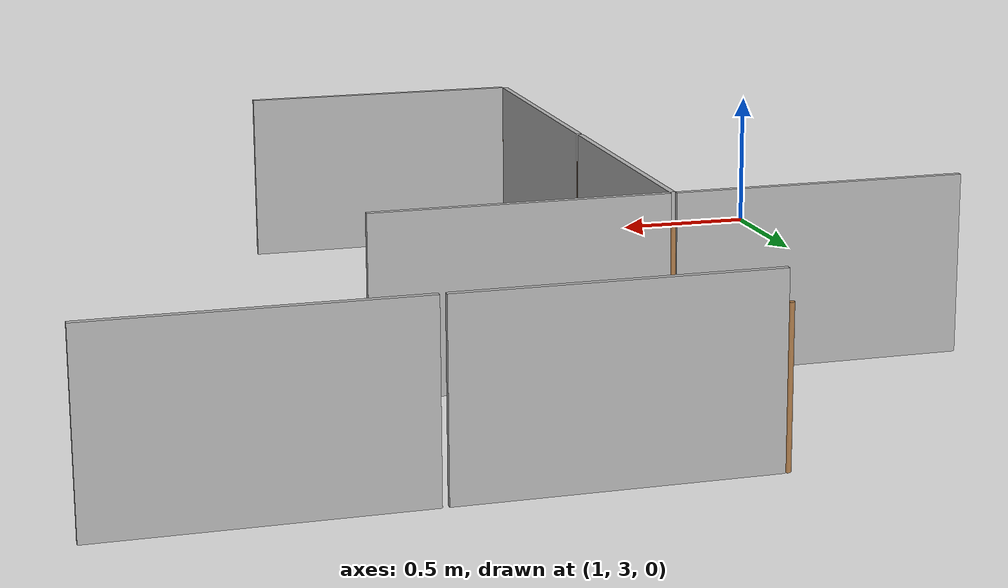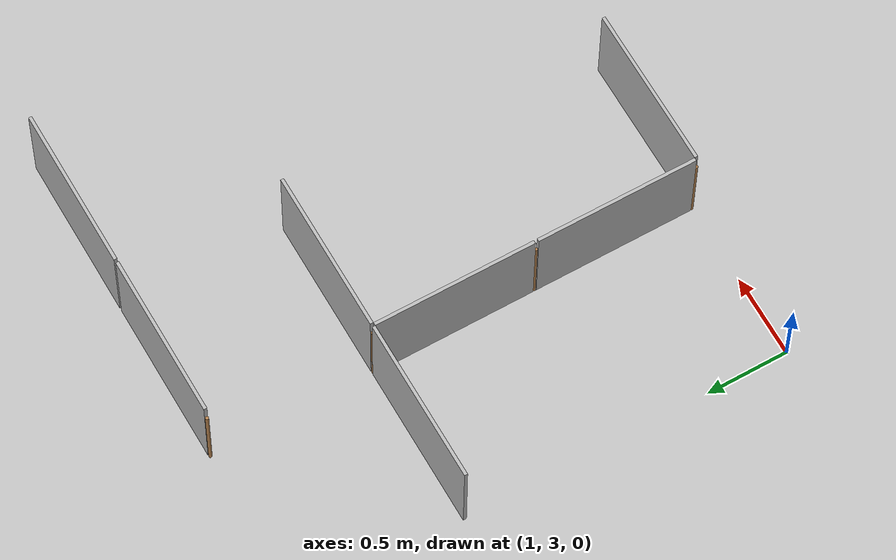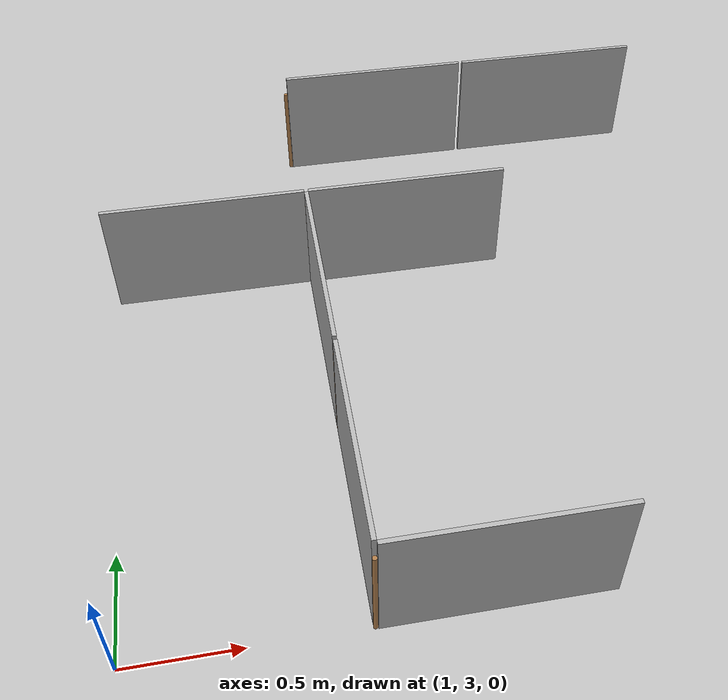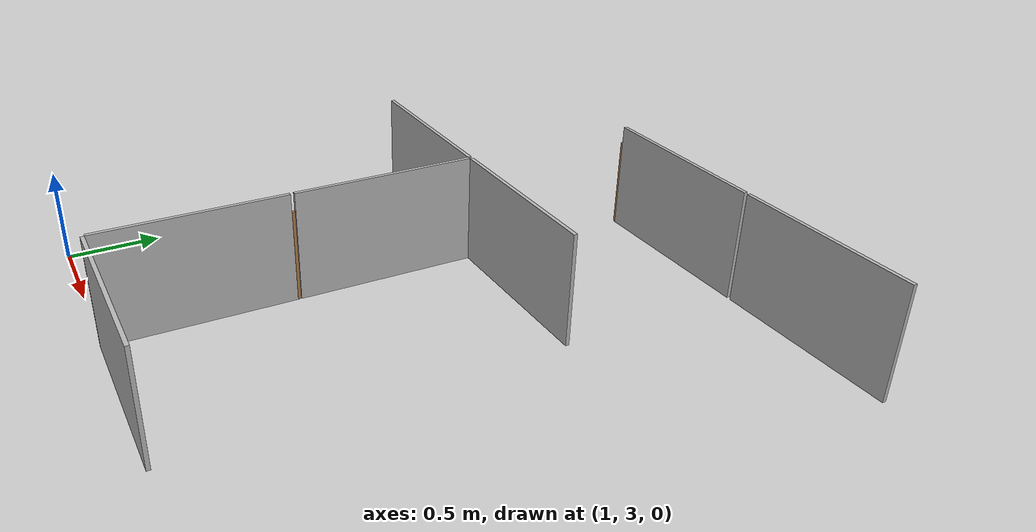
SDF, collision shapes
<sdf version="1.7">
 <model name="maze_3_6x6">
  <link name="plywood_panel_2_4_a::main">
   <pose>2 4 0 0 -0 0</pose>
   <visual name="visual">
    <pose>0.01 -0.01 0 3.14159 -1.57059 3.14159</pose>
    <geometry><mesh><scale>1 1 1</scale><uri>model://plywood_panel/meshes/plywood.dae</uri></mesh></geometry>
    <material><shader type="pixel"/></material>
   </visual>
   <collision name="collision">
    <pose>0 -0.5 0.3 -1.571 -0 -1.571</pose>
    <geometry><box><size>0.98 0.6 0.02</size></box></geometry>
    <surface>
     <friction>
      <ode><mu>1</mu><mu2>1</mu2><fdir1>0 0 0</fdir1><slip1>0</slip1><slip2>0</slip2></ode>
      <torsional>
       <coefficient>1</coefficient>
       <patch_radius>0</patch_radius>
       <surface_radius>0</surface_radius>
       <use_patch_radius>1</use_patch_radius>
       <ode><slip>0</slip></ode>
      </torsional>
     </friction>
     <bounce><restitution_coefficient>0</restitution_coefficient><threshold>1e+06</threshold></bounce>
     <contact>
      <collide_without_contact>0</collide_without_contact>
      <collide_without_contact_bitmask>1</collide_without_contact_bitmask>
      <collide_bitmask>1</collide_bitmask>
      <ode>
       <soft_cfm>0</soft_cfm>
       <soft_erp>0.2</soft_erp>
       <kp>1e+13</kp>
       <kd>1</kd>
       <max_vel>0.01</max_vel>
       <min_depth>0</min_depth>
      </ode>
      <bullet>
       <split_impulse>1</split_impulse>
       <split_impulse_penetration_threshold>-0.01</split_impulse_penetration_threshold>
       <soft_cfm>0</soft_cfm>
       <soft_erp>0.2</soft_erp>
       <kp>1e+13</kp>
       <kd>1</kd>
      </bullet>
     </contact>
    </surface>
   </collision>
  </link>
  <link name="plywood_panel_2_5_a::main">
   <pose>2 5 0 0 -0 0</pose>
   <visual name="visual">
    <pose>0.01 -0.01 0 3.14159 -1.57059 3.14159</pose>
    <geometry><mesh><scale>1 1 1</scale><uri>model://plywood_panel/meshes/plywood.dae</uri></mesh></geometry>
    <material><shader type="pixel"/></material>
   </visual>
   <collision name="collision">
    <pose>0 -0.5 0.3 -1.571 -0 -1.571</pose>
    <geometry><box><size>0.98 0.6 0.02</size></box></geometry>
    <surface>
     <friction>
      <ode><mu>1</mu><mu2>1</mu2><fdir1>0 0 0</fdir1><slip1>0</slip1><slip2>0</slip2></ode>
      <torsional>
       <coefficient>1</coefficient>
       <patch_radius>0</patch_radius>
       <surface_radius>0</surface_radius>
       <use_patch_radius>1</use_patch_radius>
       <ode><slip>0</slip></ode>
      </torsional>
     </friction>
     <bounce><restitution_coefficient>0</restitution_coefficient><threshold>1e+06</threshold></bounce>
     <contact>
      <collide_without_contact>0</collide_without_contact>
      <collide_without_contact_bitmask>1</collide_without_contact_bitmask>
      <collide_bitmask>1</collide_bitmask>
      <ode>
       <soft_cfm>0</soft_cfm>
       <soft_erp>0.2</soft_erp>
       <kp>1e+13</kp>
       <kd>1</kd>
       <max_vel>0.01</max_vel>
       <min_depth>0</min_depth>
      </ode>
      <bullet>
       <split_impulse>1</split_impulse>
       <split_impulse_penetration_threshold>-0.01</split_impulse_penetration_threshold>
       <soft_cfm>0</soft_cfm>
       <soft_erp>0.2</soft_erp>
       <kp>1e+13</kp>
       <kd>1</kd>
      </bullet>
     </contact>
    </surface>
   </collision>
  </link>
  <link name="plywood_panel_2_5_c::main">
   <pose>2 5 0 0 0 -1.5708</pose>
   <visual name="visual">
    <pose>0.01 -0.01 0 3.14159 -1.57059 3.14159</pose>
    <geometry><mesh><scale>1 1 1</scale><uri>model://plywood_panel/meshes/plywood.dae</uri></mesh></geometry>
    <material><shader type="pixel"/></material>
   </visual>
   <collision name="collision">
    <pose>0 -0.5 0.3 -1.571 -0 -1.571</pose>
    <geometry><box><size>0.98 0.6 0.02</size></box></geometry>
    <surface>
     <friction>
      <ode><mu>1</mu><mu2>1</mu2><fdir1>0 0 0</fdir1><slip1>0</slip1><slip2>0</slip2></ode>
      <torsional>
       <coefficient>1</coefficient>
       <patch_radius>0</patch_radius>
       <surface_radius>0</surface_radius>
       <use_patch_radius>1</use_patch_radius>
       <ode><slip>0</slip></ode>
      </torsional>
     </friction>
     <bounce><restitution_coefficient>0</restitution_coefficient><threshold>1e+06</threshold></bounce>
     <contact>
      <collide_without_contact>0</collide_without_contact>
      <collide_without_contact_bitmask>1</collide_without_contact_bitmask>
      <collide_bitmask>1</collide_bitmask>
      <ode>
       <soft_cfm>0</soft_cfm>
       <soft_erp>0.2</soft_erp>
       <kp>1e+13</kp>
       <kd>1</kd>
       <max_vel>0.01</max_vel>
       <min_depth>0</min_depth>
      </ode>
      <bullet>
       <split_impulse>1</split_impulse>
       <split_impulse_penetration_threshold>-0.01</split_impulse_penetration_threshold>
       <soft_cfm>0</soft_cfm>
       <soft_erp>0.2</soft_erp>
       <kp>1e+13</kp>
       <kd>1</kd>
      </bullet>
     </contact>
    </surface>
   </collision>
  </link>
  <link name="plywood_panel_2_6_b::main">
   <pose>2 6 0 0 -0 1.571</pose>
   <visual name="visual">
    <pose>0.01 -0.01 0 3.14159 -1.57059 3.14159</pose>
    <geometry><mesh><scale>1 1 1</scale><uri>model://plywood_panel/meshes/plywood.dae</uri></mesh></geometry>
    <material><shader type="pixel"/></material>
   </visual>
   <collision name="collision">
    <pose>0 -0.5 0.3 -1.571 -0 -1.571</pose>
    <geometry><box><size>0.98 0.6 0.02</size></box></geometry>
    <surface>
     <friction>
      <ode><mu>1</mu><mu2>1</mu2><fdir1>0 0 0</fdir1><slip1>0</slip1><slip2>0</slip2></ode>
      <torsional>
       <coefficient>1</coefficient>
       <patch_radius>0</patch_radius>
       <surface_radius>0</surface_radius>
       <use_patch_radius>1</use_patch_radius>
       <ode><slip>0</slip></ode>
      </torsional>
     </friction>
     <bounce><restitution_coefficient>0</restitution_coefficient><threshold>1e+06</threshold></bounce>
     <contact>
      <collide_without_contact>0</collide_without_contact>
      <collide_without_contact_bitmask>1</collide_without_contact_bitmask>
      <collide_bitmask>1</collide_bitmask>
      <ode>
       <soft_cfm>0</soft_cfm>
       <soft_erp>0.2</soft_erp>
       <kp>1e+13</kp>
       <kd>1</kd>
       <max_vel>0.01</max_vel>
       <min_depth>0</min_depth>
      </ode>
      <bullet>
       <split_impulse>1</split_impulse>
       <split_impulse_penetration_threshold>-0.01</split_impulse_penetration_threshold>
       <soft_cfm>0</soft_cfm>
       <soft_erp>0.2</soft_erp>
       <kp>1e+13</kp>
       <kd>1</kd>
      </bullet>
     </contact>
    </surface>
   </collision>
  </link>
  <link name="plywood_panel_3_3_c::main">
   <pose>3 3 0 0 0 -1.5708</pose>
   <visual name="visual">
    <pose>0.01 -0.01 0 3.14159 -1.57059 3.14159</pose>
    <geometry><mesh><scale>1 1 1</scale><uri>model://plywood_panel/meshes/plywood.dae</uri></mesh></geometry>
    <material><shader type="pixel"/></material>
   </visual>
   <collision name="collision">
    <pose>0 -0.5 0.3 -1.571 -0 -1.571</pose>
    <geometry><box><size>0.98 0.6 0.02</size></box></geometry>
    <surface>
     <friction>
      <ode><mu>1</mu><mu2>1</mu2><fdir1>0 0 0</fdir1><slip1>0</slip1><slip2>0</slip2></ode>
      <torsional>
       <coefficient>1</coefficient>
       <patch_radius>0</patch_radius>
       <surface_radius>0</surface_radius>
       <use_patch_radius>1</use_patch_radius>
       <ode><slip>0</slip></ode>
      </torsional>
     </friction>
     <bounce><restitution_coefficient>0</restitution_coefficient><threshold>1e+06</threshold></bounce>
     <contact>
      <collide_without_contact>0</collide_without_contact>
      <collide_without_contact_bitmask>1</collide_without_contact_bitmask>
      <collide_bitmask>1</collide_bitmask>
      <ode>
       <soft_cfm>0</soft_cfm>
       <soft_erp>0.2</soft_erp>
       <kp>1e+13</kp>
       <kd>1</kd>
       <max_vel>0.01</max_vel>
       <min_depth>0</min_depth>
      </ode>
      <bullet>
       <split_impulse>1</split_impulse>
       <split_impulse_penetration_threshold>-0.01</split_impulse_penetration_threshold>
       <soft_cfm>0</soft_cfm>
       <soft_erp>0.2</soft_erp>
       <kp>1e+13</kp>
       <kd>1</kd>
      </bullet>
     </contact>
    </surface>
   </collision>
  </link>
  <link name="plywood_panel_3_5_c::main">
   <pose>3 5 0 0 0 -1.5708</pose>
   <visual name="visual">
    <pose>0.01 -0.01 0 3.14159 -1.57059 3.14159</pose>
    <geometry><mesh><scale>1 1 1</scale><uri>model://plywood_panel/meshes/plywood.dae</uri></mesh></geometry>
    <material><shader type="pixel"/></material>
   </visual>
   <collision name="collision">
    <pose>0 -0.5 0.3 -1.571 -0 -1.571</pose>
    <geometry><box><size>0.98 0.6 0.02</size></box></geometry>
    <surface>
     <friction>
      <ode><mu>1</mu><mu2>1</mu2><fdir1>0 0 0</fdir1><slip1>0</slip1><slip2>0</slip2></ode>
      <torsional>
       <coefficient>1</coefficient>
       <patch_radius>0</patch_radius>
       <surface_radius>0</surface_radius>
       <use_patch_radius>1</use_patch_radius>
       <ode><slip>0</slip></ode>
      </torsional>
     </friction>
     <bounce><restitution_coefficient>0</restitution_coefficient><threshold>1e+06</threshold></bounce>
     <contact>
      <collide_without_contact>0</collide_without_contact>
      <collide_without_contact_bitmask>1</collide_without_contact_bitmask>
      <collide_bitmask>1</collide_bitmask>
      <ode>
       <soft_cfm>0</soft_cfm>
       <soft_erp>0.2</soft_erp>
       <kp>1e+13</kp>
       <kd>1</kd>
       <max_vel>0.01</max_vel>
       <min_depth>0</min_depth>
      </ode>
      <bullet>
       <split_impulse>1</split_impulse>
       <split_impulse_penetration_threshold>-0.01</split_impulse_penetration_threshold>
       <soft_cfm>0</soft_cfm>
       <soft_erp>0.2</soft_erp>
       <kp>1e+13</kp>
       <kd>1</kd>
      </bullet>
     </contact>
    </surface>
   </collision>
  </link>
  <link name="plywood_panel_3_6_b::main">
   <pose>3 6 0 0 -0 1.571</pose>
   <visual name="visual">
    <pose>0.01 -0.01 0 3.14159 -1.57059 3.14159</pose>
    <geometry><mesh><scale>1 1 1</scale><uri>model://plywood_panel/meshes/plywood.dae</uri></mesh></geometry>
    <material><shader type="pixel"/></material>
   </visual>
   <collision name="collision">
    <pose>0 -0.5 0.3 -1.571 -0 -1.571</pose>
    <geometry><box><size>0.98 0.6 0.02</size></box></geometry>
    <surface>
     <friction>
      <ode><mu>1</mu><mu2>1</mu2><fdir1>0 0 0</fdir1><slip1>0</slip1><slip2>0</slip2></ode>
      <torsional>
       <coefficient>1</coefficient>
       <patch_radius>0</patch_radius>
       <surface_radius>0</surface_radius>
       <use_patch_radius>1</use_patch_radius>
       <ode><slip>0</slip></ode>
      </torsional>
     </friction>
     <bounce><restitution_coefficient>0</restitution_coefficient><threshold>1e+06</threshold></bounce>
     <contact>
      <collide_without_contact>0</collide_without_contact>
      <collide_without_contact_bitmask>1</collide_without_contact_bitmask>
      <collide_bitmask>1</collide_bitmask>
      <ode>
       <soft_cfm>0</soft_cfm>
       <soft_erp>0.2</soft_erp>
       <kp>1e+13</kp>
       <kd>1</kd>
       <max_vel>0.01</max_vel>
       <min_depth>0</min_depth>
      </ode>
      <bullet>
       <split_impulse>1</split_impulse>
       <split_impulse_penetration_threshold>-0.01</split_impulse_penetration_threshold>
       <soft_cfm>0</soft_cfm>
       <soft_erp>0.2</soft_erp>
       <kp>1e+13</kp>
       <kd>1</kd>
      </bullet>
     </contact>
    </surface>
   </collision>
  </link>
  <link name="wooden_joint_2_3::link_0">
   <pose>2 3 0.25 0 -0 0</pose>
   <inertial>
    <mass>0.00215981</mass>
    <inertia>
     <ixx>0.00018028</ixx>
     <ixy>0</ixy>
     <ixz>0</ixz>
     <iyy>0.00018028</iyy>
     <iyz>0</iyz>
     <izz>5.8e-07</izz>
    </inertia>
   </inertial>
   <visual name="visual">
    <geometry><cylinder><radius>0.01</radius><length>0.5</length></cylinder></geometry>
    <material>
     <lighting>1</lighting>
     <script><uri>file://media/materials/scripts/gazebo.material</uri><name>Gazebo/Wood</name></script>
     <shader type="pixel"><normal_map>__default__</normal_map></shader>
     <ambient>0.3 0.3 0.3 1</ambient>
     <diffuse>0.7 0.7 0.7 1</diffuse>
     <specular>0.01 0.01 0.01 1</specular>
     <emissive>0 0 0 1</emissive>
    </material>
   </visual>
   <collision name="collision">
    <geometry><cylinder><radius>0.01</radius><length>0.5</length></cylinder></geometry>
    <surface>
     <friction>
      <ode><mu>1</mu><mu2>1</mu2><fdir1>0 0 0</fdir1><slip1>0</slip1><slip2>0</slip2></ode>
      <torsional>
       <coefficient>1</coefficient>
       <patch_radius>0</patch_radius>
       <surface_radius>0</surface_radius>
       <use_patch_radius>1</use_patch_radius>
       <ode><slip>0</slip></ode>
      </torsional>
     </friction>
     <bounce><restitution_coefficient>0</restitution_coefficient><threshold>1e+06</threshold></bounce>
     <contact>
      <collide_without_contact>0</collide_without_contact>
      <collide_without_contact_bitmask>1</collide_without_contact_bitmask>
      <collide_bitmask>1</collide_bitmask>
      <ode>
       <soft_cfm>0</soft_cfm>
       <soft_erp>0.2</soft_erp>
       <kp>1e+13</kp>
       <kd>1</kd>
       <max_vel>0.01</max_vel>
       <min_depth>0</min_depth>
      </ode>
      <bullet>
       <split_impulse>1</split_impulse>
       <split_impulse_penetration_threshold>-0.01</split_impulse_penetration_threshold>
       <soft_cfm>0</soft_cfm>
       <soft_erp>0.2</soft_erp>
       <kp>1e+13</kp>
       <kd>1</kd>
      </bullet>
     </contact>
    </surface>
   </collision>
  </link>
  <link name="wooden_joint_2_4::link_0">
   <pose>2 4 0.25 0 -0 0</pose>
   <inertial>
    <mass>0.00215981</mass>
    <inertia>
     <ixx>0.00018028</ixx>
     <ixy>0</ixy>
     <ixz>0</ixz>
     <iyy>0.00018028</iyy>
     <iyz>0</iyz>
     <izz>5.8e-07</izz>
    </inertia>
   </inertial>
   <visual name="visual">
    <geometry><cylinder><radius>0.01</radius><length>0.5</length></cylinder></geometry>
    <material>
     <lighting>1</lighting>
     <script><uri>file://media/materials/scripts/gazebo.material</uri><name>Gazebo/Wood</name></script>
     <shader type="pixel"><normal_map>__default__</normal_map></shader>
     <ambient>0.3 0.3 0.3 1</ambient>
     <diffuse>0.7 0.7 0.7 1</diffuse>
     <specular>0.01 0.01 0.01 1</specular>
     <emissive>0 0 0 1</emissive>
    </material>
   </visual>
   <collision name="collision">
    <geometry><cylinder><radius>0.01</radius><length>0.5</length></cylinder></geometry>
    <surface>
     <friction>
      <ode><mu>1</mu><mu2>1</mu2><fdir1>0 0 0</fdir1><slip1>0</slip1><slip2>0</slip2></ode>
      <torsional>
       <coefficient>1</coefficient>
       <patch_radius>0</patch_radius>
       <surface_radius>0</surface_radius>
       <use_patch_radius>1</use_patch_radius>
       <ode><slip>0</slip></ode>
      </torsional>
     </friction>
     <bounce><restitution_coefficient>0</restitution_coefficient><threshold>1e+06</threshold></bounce>
     <contact>
      <collide_without_contact>0</collide_without_contact>
      <collide_without_contact_bitmask>1</collide_without_contact_bitmask>
      <collide_bitmask>1</collide_bitmask>
      <ode>
       <soft_cfm>0</soft_cfm>
       <soft_erp>0.2</soft_erp>
       <kp>1e+13</kp>
       <kd>1</kd>
       <max_vel>0.01</max_vel>
       <min_depth>0</min_depth>
      </ode>
      <bullet>
       <split_impulse>1</split_impulse>
       <split_impulse_penetration_threshold>-0.01</split_impulse_penetration_threshold>
       <soft_cfm>0</soft_cfm>
       <soft_erp>0.2</soft_erp>
       <kp>1e+13</kp>
       <kd>1</kd>
      </bullet>
     </contact>
    </surface>
   </collision>
  </link>
  <link name="wooden_joint_2_5::link_0">
   <pose>2 5 0.25 0 -0 0</pose>
   <inertial>
    <mass>0.00215981</mass>
    <inertia>
     <ixx>0.00018028</ixx>
     <ixy>0</ixy>
     <ixz>0</ixz>
     <iyy>0.00018028</iyy>
     <iyz>0</iyz>
     <izz>5.8e-07</izz>
    </inertia>
   </inertial>
   <visual name="visual">
    <geometry><cylinder><radius>0.01</radius><length>0.5</length></cylinder></geometry>
    <material>
     <lighting>1</lighting>
     <script><uri>file://media/materials/scripts/gazebo.material</uri><name>Gazebo/Wood</name></script>
     <shader type="pixel"><normal_map>__default__</normal_map></shader>
     <ambient>0.3 0.3 0.3 1</ambient>
     <diffuse>0.7 0.7 0.7 1</diffuse>
     <specular>0.01 0.01 0.01 1</specular>
     <emissive>0 0 0 1</emissive>
    </material>
   </visual>
   <collision name="collision">
    <geometry><cylinder><radius>0.01</radius><length>0.5</length></cylinder></geometry>
    <surface>
     <friction>
      <ode><mu>1</mu><mu2>1</mu2><fdir1>0 0 0</fdir1><slip1>0</slip1><slip2>0</slip2></ode>
      <torsional>
       <coefficient>1</coefficient>
       <patch_radius>0</patch_radius>
       <surface_radius>0</surface_radius>
       <use_patch_radius>1</use_patch_radius>
       <ode><slip>0</slip></ode>
      </torsional>
     </friction>
     <bounce><restitution_coefficient>0</restitution_coefficient><threshold>1e+06</threshold></bounce>
     <contact>
      <collide_without_contact>0</collide_without_contact>
      <collide_without_contact_bitmask>1</collide_without_contact_bitmask>
      <collide_bitmask>1</collide_bitmask>
      <ode>
       <soft_cfm>0</soft_cfm>
       <soft_erp>0.2</soft_erp>
       <kp>1e+13</kp>
       <kd>1</kd>
       <max_vel>0.01</max_vel>
       <min_depth>0</min_depth>
      </ode>
      <bullet>
       <split_impulse>1</split_impulse>
       <split_impulse_penetration_threshold>-0.01</split_impulse_penetration_threshold>
       <soft_cfm>0</soft_cfm>
       <soft_erp>0.2</soft_erp>
       <kp>1e+13</kp>
       <kd>1</kd>
      </bullet>
     </contact>
    </surface>
   </collision>
  </link>
  <link name="wooden_joint_2_6_b::link_0">
   <pose>2 6 0.25 0 -0 0</pose>
   <inertial>
    <mass>0.00215981</mass>
    <inertia>
     <ixx>0.00018028</ixx>
     <ixy>0</ixy>
     <ixz>0</ixz>
     <iyy>0.00018028</iyy>
     <iyz>0</iyz>
     <izz>5.8e-07</izz>
    </inertia>
   </inertial>
   <visual name="visual">
    <geometry><cylinder><radius>0.01</radius><length>0.5</length></cylinder></geometry>
    <material>
     <lighting>1</lighting>
     <script><uri>file://media/materials/scripts/gazebo.material</uri><name>Gazebo/Wood</name></script>
     <shader type="pixel"><normal_map>__default__</normal_map></shader>
     <ambient>0.3 0.3 0.3 1</ambient>
     <diffuse>0.7 0.7 0.7 1</diffuse>
     <specular>0.01 0.01 0.01 1</specular>
     <emissive>0 0 0 1</emissive>
    </material>
   </visual>
   <collision name="collision">
    <geometry><cylinder><radius>0.01</radius><length>0.5</length></cylinder></geometry>
    <surface>
     <friction>
      <ode><mu>1</mu><mu2>1</mu2><fdir1>0 0 0</fdir1><slip1>0</slip1><slip2>0</slip2></ode>
      <torsional>
       <coefficient>1</coefficient>
       <patch_radius>0</patch_radius>
       <surface_radius>0</surface_radius>
       <use_patch_radius>1</use_patch_radius>
       <ode><slip>0</slip></ode>
      </torsional>
     </friction>
     <bounce><restitution_coefficient>0</restitution_coefficient><threshold>1e+06</threshold></bounce>
     <contact>
      <collide_without_contact>0</collide_without_contact>
      <collide_without_contact_bitmask>1</collide_without_contact_bitmask>
      <collide_bitmask>1</collide_bitmask>
      <ode>
       <soft_cfm>0</soft_cfm>
       <soft_erp>0.2</soft_erp>
       <kp>1e+13</kp>
       <kd>1</kd>
       <max_vel>0.01</max_vel>
       <min_depth>0</min_depth>
      </ode>
      <bullet>
       <split_impulse>1</split_impulse>
       <split_impulse_penetration_threshold>-0.01</split_impulse_penetration_threshold>
       <soft_cfm>0</soft_cfm>
       <soft_erp>0.2</soft_erp>
       <kp>1e+13</kp>
       <kd>1</kd>
      </bullet>
     </contact>
    </surface>
   </collision>
  </link>
  <static>1</static>
 </model>
</sdf>
